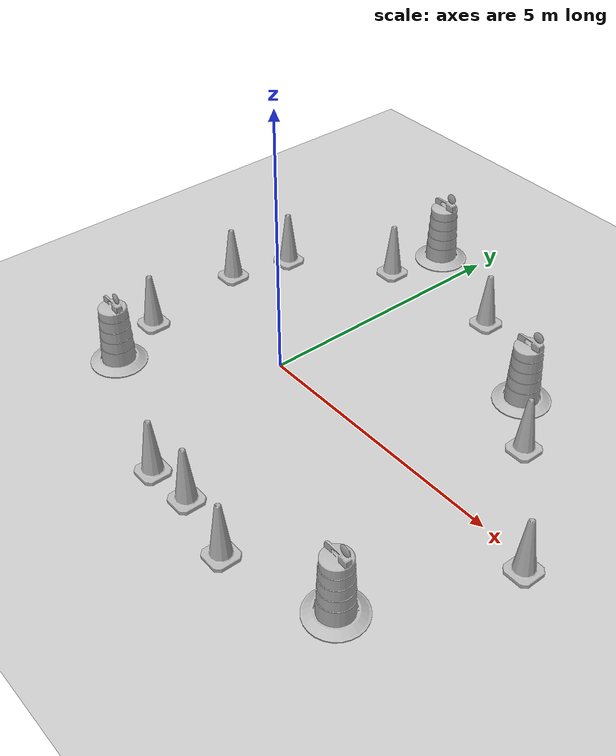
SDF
<sdf version='1.10'>
  <world name='empty'>
    <physics name='1ms' type='ignored'>
      <max_step_size>0.001</max_step_size>
      <real_time_factor>1</real_time_factor>
      <real_time_update_rate>1000</real_time_update_rate>
    </physics>
    <plugin name='gz::sim::systems::Physics' filename='gz-sim-physics-system'/>
    <plugin name='gz::sim::systems::UserCommands' filename='gz-sim-user-commands-system'/>
    <plugin name='gz::sim::systems::SceneBroadcaster' filename='gz-sim-scene-broadcaster-system'/>
    <plugin name='gz::sim::systems::Contact' filename='gz-sim-contact-system'/>
    <gravity>0 0 -9.8000000000000007</gravity>
    <magnetic_field>5.5644999999999998e-06 2.2875799999999999e-05 -4.2388400000000002e-05</magnetic_field>
    <atmosphere type='adiabatic'/>
    <scene>
      <ambient>0.400000006 0.400000006 0.400000006 1</ambient>
      <background>0.699999988 0.699999988 0.699999988 1</background>
      <shadows>true</shadows>
    </scene>
    <model name='ground_plane'>
      <static>true</static>
      <link name='link'>
        <collision name='collision'>
          <geometry>
            <plane>
              <normal>0 0 1</normal>
              <size>100 100</size>
            </plane>
          </geometry>
          <surface>
            <friction>
              <ode/>
            </friction>
            <bounce/>
            <contact/>
          </surface>
        </collision>
        <visual name='visual'>
          <geometry>
            <plane>
              <normal>0 0 1</normal>
              <size>100 100</size>
            </plane>
          </geometry>
          <material>
            <ambient>0.800000012 0.800000012 0.800000012 1</ambient>
            <diffuse>0.800000012 0.800000012 0.800000012 1</diffuse>
            <specular>0.800000012 0.800000012 0.800000012 1</specular>
          </material>
        </visual>
        <pose>0 0 0 0 0 0</pose>
        <inertial>
          <pose>0 0 0 0 0 0</pose>
          <mass>1</mass>
          <inertia>
            <ixx>1</ixx>
            <ixy>0</ixy>
            <ixz>0</ixz>
            <iyy>1</iyy>
            <iyz>0</iyz>
            <izz>1</izz>
          </inertia>
        </inertial>
        <enable_wind>false</enable_wind>
      </link>
      <pose>0 0 0 0 0 0</pose>
      <self_collide>false</self_collide>
    </model>
    <model name='Construction Barrel'>
      <link name='link'>
        <inertial>
          <pose>0 0 0.40000000000000002 0 0 0</pose>
          <mass>500</mass>
          <inertia>
            <ixx>51.209600000000002</ixx>
            <iyy>51.209600000000002</iyy>
            <izz>25</izz>
            <ixy>0</ixy>
            <ixz>0</ixz>
            <iyz>0</iyz>
          </inertia>
        </inertial>
        <collision name='collision'>
          <geometry>
            <mesh>
              <uri>file:///home/gabriel-vidal/dev_ws/src/my_bot/models/construction_barrel/meshes/construction_barrel.dae</uri>
            </mesh>
          </geometry>
        </collision>
        <visual name='visual'>
          <geometry>
            <mesh>
              <uri>file:///home/gabriel-vidal/dev_ws/src/my_bot/models/construction_barrel/meshes/construction_barrel.dae</uri>
            </mesh>
          </geometry>
        </visual>
        <pose>0 0 0 0 0 0</pose>
        <enable_wind>false</enable_wind>
      </link>
      <pose>3.3563624736045483 2.6226405537947932 0 0 0 0</pose>
      <static>false</static>
      <self_collide>false</self_collide>
    </model>
    <model name='Construction Barrel_0'>
      <link name='link'>
        <inertial>
          <pose>0 0 0.40000000000000002 0 0 0</pose>
          <mass>500</mass>
          <inertia>
            <ixx>51.209600000000002</ixx>
            <iyy>51.209600000000002</iyy>
            <izz>25</izz>
            <ixy>0</ixy>
            <ixz>0</ixz>
            <iyz>0</iyz>
          </inertia>
        </inertial>
        <collision name='collision'>
          <geometry>
            <mesh>
              <uri>file:///home/gabriel-vidal/dev_ws/src/my_bot/models/construction_barrel/meshes/construction_barrel.dae</uri>
            </mesh>
          </geometry>
        </collision>
        <visual name='visual'>
          <geometry>
            <mesh>
              <uri>file:///home/gabriel-vidal/dev_ws/src/my_bot/models/construction_barrel/meshes/construction_barrel.dae</uri>
            </mesh>
          </geometry>
        </visual>
        <pose>0 0 0 0 0 0</pose>
        <enable_wind>false</enable_wind>
      </link>
      <pose>-0.65427540934645823 4.6099522019395058 0 0 0 0</pose>
      <static>false</static>
      <self_collide>false</self_collide>
    </model>
    <model name='Construction Barrel_1'>
      <link name='link'>
        <inertial>
          <pose>0 0 0.40000000000000002 0 0 0</pose>
          <mass>500</mass>
          <inertia>
            <ixx>51.209600000000002</ixx>
            <iyy>51.209600000000002</iyy>
            <izz>25</izz>
            <ixy>0</ixy>
            <ixz>0</ixz>
            <iyz>0</iyz>
          </inertia>
        </inertial>
        <collision name='collision'>
          <geometry>
            <mesh>
              <uri>file:///home/gabriel-vidal/dev_ws/src/my_bot/models/construction_barrel/meshes/construction_barrel.dae</uri>
            </mesh>
          </geometry>
        </collision>
        <visual name='visual'>
          <geometry>
            <mesh>
              <uri>file:///home/gabriel-vidal/dev_ws/src/my_bot/models/construction_barrel/meshes/construction_barrel.dae</uri>
            </mesh>
          </geometry>
        </visual>
        <pose>0 0 0 0 0 0</pose>
        <enable_wind>false</enable_wind>
      </link>
      <pose>4.8185210325130505 -2.7676932809041381 0 0 0 0</pose>
      <static>false</static>
      <self_collide>false</self_collide>
    </model>
    <model name='Construction Barrel_2'>
      <link name='link'>
        <inertial>
          <pose>0 0 0.40000000000000002 0 0 0</pose>
          <mass>500</mass>
          <inertia>
            <ixx>51.209600000000002</ixx>
            <iyy>51.209600000000002</iyy>
            <izz>25</izz>
            <ixy>0</ixy>
            <ixz>0</ixz>
            <iyz>0</iyz>
          </inertia>
        </inertial>
        <collision name='collision'>
          <geometry>
            <mesh>
              <uri>file:///home/gabriel-vidal/dev_ws/src/my_bot/models/construction_barrel/meshes/construction_barrel.dae</uri>
            </mesh>
          </geometry>
        </collision>
        <visual name='visual'>
          <geometry>
            <mesh>
              <uri>file:///home/gabriel-vidal/dev_ws/src/my_bot/models/construction_barrel/meshes/construction_barrel.dae</uri>
            </mesh>
          </geometry>
        </visual>
        <pose>0 0 0 0 0 0</pose>
        <enable_wind>false</enable_wind>
      </link>
      <pose>-1.9442441608846392 -2.1336244816185834 0 0 0 0</pose>
      <static>false</static>
      <self_collide>false</self_collide>
    </model>
    <model name='Construction Cone'>
      <link name='link'>
        <collision name='collision'>
          <geometry>
            <mesh>
              <scale>10 10 10</scale>
              <uri>file:///home/gabriel-vidal/dev_ws/src/my_bot/models/construction_cone/meshes/construction_cone.dae</uri>
            </mesh>
          </geometry>
        </collision>
        <visual name='visual'>
          <geometry>
            <mesh>
              <scale>10 10 10</scale>
              <uri>file:///home/gabriel-vidal/dev_ws/src/my_bot/models/construction_cone/meshes/construction_cone.dae</uri>
            </mesh>
          </geometry>
        </visual>
        <pose>0 0 0 0 0 0</pose>
        <inertial>
          <pose>0 0 0 0 0 0</pose>
          <mass>1</mass>
          <inertia>
            <ixx>1</ixx>
            <ixy>0</ixy>
            <ixz>0</ixz>
            <iyy>1</iyy>
            <iyz>0</iyz>
            <izz>1</izz>
          </inertia>
        </inertial>
        <enable_wind>false</enable_wind>
      </link>
      <pose>2.95852421887923 -3.4027824223628493 0 0 0 0</pose>
      <static>false</static>
      <self_collide>false</self_collide>
    </model>
    <model name='Construction Cone_0'>
      <link name='link'>
        <collision name='collision'>
          <geometry>
            <mesh>
              <scale>10 10 10</scale>
              <uri>file:///home/gabriel-vidal/dev_ws/src/my_bot/models/construction_cone/meshes/construction_cone.dae</uri>
            </mesh>
          </geometry>
        </collision>
        <visual name='visual'>
          <geometry>
            <mesh>
              <scale>10 10 10</scale>
              <uri>file:///home/gabriel-vidal/dev_ws/src/my_bot/models/construction_cone/meshes/construction_cone.dae</uri>
            </mesh>
          </geometry>
        </visual>
        <pose>0 0 0 0 0 0</pose>
        <inertial>
          <pose>0 0 0 0 0 0</pose>
          <mass>1</mass>
          <inertia>
            <ixx>1</ixx>
            <ixy>0</ixy>
            <ixz>0</ixz>
            <iyy>1</iyy>
            <iyz>0</iyz>
            <izz>1</izz>
          </inertia>
        </inertial>
        <enable_wind>false</enable_wind>
      </link>
      <pose>1.6991263963474195 -3.1582245717215125 0 0 0 0</pose>
      <static>false</static>
      <self_collide>false</self_collide>
    </model>
    <model name='Construction Cone_1'>
      <link name='link'>
        <collision name='collision'>
          <geometry>
            <mesh>
              <scale>10 10 10</scale>
              <uri>file:///home/gabriel-vidal/dev_ws/src/my_bot/models/construction_cone/meshes/construction_cone.dae</uri>
            </mesh>
          </geometry>
        </collision>
        <visual name='visual'>
          <geometry>
            <mesh>
              <scale>10 10 10</scale>
              <uri>file:///home/gabriel-vidal/dev_ws/src/my_bot/models/construction_cone/meshes/construction_cone.dae</uri>
            </mesh>
          </geometry>
        </visual>
        <pose>0 0 0 0 0 0</pose>
        <inertial>
          <pose>0 0 0 0 0 0</pose>
          <mass>1</mass>
          <inertia>
            <ixx>1</ixx>
            <ixy>0</ixy>
            <ixz>0</ixz>
            <iyy>1</iyy>
            <iyz>0</iyz>
            <izz>1</izz>
          </inertia>
        </inertial>
        <enable_wind>false</enable_wind>
      </link>
      <pose>4.2361936879602755 1.7220277393712669 0 0 0 0</pose>
      <static>false</static>
      <self_collide>false</self_collide>
    </model>
    <model name='Construction Cone_2'>
      <link name='link'>
        <collision name='collision'>
          <geometry>
            <mesh>
              <scale>10 10 10</scale>
              <uri>file:///home/gabriel-vidal/dev_ws/src/my_bot/models/construction_cone/meshes/construction_cone.dae</uri>
            </mesh>
          </geometry>
        </collision>
        <visual name='visual'>
          <geometry>
            <mesh>
              <scale>10 10 10</scale>
              <uri>file:///home/gabriel-vidal/dev_ws/src/my_bot/models/construction_cone/meshes/construction_cone.dae</uri>
            </mesh>
          </geometry>
        </visual>
        <pose>0 0 0 0 0 0</pose>
        <inertial>
          <pose>0 0 0 0 0 0</pose>
          <mass>1</mass>
          <inertia>
            <ixx>1</ixx>
            <ixy>0</ixy>
            <ixz>0</ixz>
            <iyy>1</iyy>
            <iyz>0</iyz>
            <izz>1</izz>
          </inertia>
        </inertial>
        <enable_wind>false</enable_wind>
      </link>
      <pose>-0.85860120530294015 3.4749694630725272 0 0 0 0</pose>
      <static>false</static>
      <self_collide>false</self_collide>
    </model>
    <model name='Construction Cone_3'>
      <link name='link'>
        <collision name='collision'>
          <geometry>
            <mesh>
              <scale>10 10 10</scale>
              <uri>file:///home/gabriel-vidal/dev_ws/src/my_bot/models/construction_cone/meshes/construction_cone.dae</uri>
            </mesh>
          </geometry>
        </collision>
        <visual name='visual'>
          <geometry>
            <mesh>
              <scale>10 10 10</scale>
              <uri>file:///home/gabriel-vidal/dev_ws/src/my_bot/models/construction_cone/meshes/construction_cone.dae</uri>
            </mesh>
          </geometry>
        </visual>
        <pose>0 0 0 0 0 0</pose>
        <inertial>
          <pose>0 0 0 0 0 0</pose>
          <mass>1</mass>
          <inertia>
            <ixx>1</ixx>
            <ixy>0</ixy>
            <ixz>0</ixz>
            <iyy>1</iyy>
            <iyz>0</iyz>
            <izz>1</izz>
          </inertia>
        </inertial>
        <enable_wind>false</enable_wind>
      </link>
      <pose>-2.7516275477543166 0.97802593401269378 0 0 0 0</pose>
      <static>false</static>
      <self_collide>false</self_collide>
    </model>
    <model name='Construction Cone_4'>
      <link name='link'>
        <collision name='collision'>
          <geometry>
            <mesh>
              <scale>10 10 10</scale>
              <uri>file:///home/gabriel-vidal/dev_ws/src/my_bot/models/construction_cone/meshes/construction_cone.dae</uri>
            </mesh>
          </geometry>
        </collision>
        <visual name='visual'>
          <geometry>
            <mesh>
              <scale>10 10 10</scale>
              <uri>file:///home/gabriel-vidal/dev_ws/src/my_bot/models/construction_cone/meshes/construction_cone.dae</uri>
            </mesh>
          </geometry>
        </visual>
        <pose>0 0 0 0 0 0</pose>
        <inertial>
          <pose>0 0 0 0 0 0</pose>
          <mass>1</mass>
          <inertia>
            <ixx>1</ixx>
            <ixy>0</ixy>
            <ixz>0</ixz>
            <iyy>1</iyy>
            <iyz>0</iyz>
            <izz>1</izz>
          </inertia>
        </inertial>
        <enable_wind>false</enable_wind>
      </link>
      <pose>-2.4378398066079723 -1.0799192379916911 0 0 0 0</pose>
      <static>false</static>
      <self_collide>false</self_collide>
    </model>
    <model name='Construction Cone_5'>
      <link name='link'>
        <collision name='collision'>
          <geometry>
            <mesh>
              <scale>10 10 10</scale>
              <uri>file:///home/gabriel-vidal/dev_ws/src/my_bot/models/construction_cone/meshes/construction_cone.dae</uri>
            </mesh>
          </geometry>
        </collision>
        <visual name='visual'>
          <geometry>
            <mesh>
              <scale>10 10 10</scale>
              <uri>file:///home/gabriel-vidal/dev_ws/src/my_bot/models/construction_cone/meshes/construction_cone.dae</uri>
            </mesh>
          </geometry>
        </visual>
        <pose>0 0 0 0 0 0</pose>
        <inertial>
          <pose>0 0 0 0 0 0</pose>
          <mass>1</mass>
          <inertia>
            <ixx>1</ixx>
            <ixy>0</ixy>
            <ixz>0</ixz>
            <iyy>1</iyy>
            <iyz>0</iyz>
            <izz>1</izz>
          </inertia>
        </inertial>
        <enable_wind>false</enable_wind>
      </link>
      <pose>0.83954273981658023 -3.2189747311332941 0 0 0 0</pose>
      <static>false</static>
      <self_collide>false</self_collide>
    </model>
    <model name='Construction Cone_6'>
      <link name='link'>
        <collision name='collision'>
          <geometry>
            <mesh>
              <scale>10 10 10</scale>
              <uri>file:///home/gabriel-vidal/dev_ws/src/my_bot/models/construction_cone/meshes/construction_cone.dae</uri>
            </mesh>
          </geometry>
        </collision>
        <visual name='visual'>
          <geometry>
            <mesh>
              <scale>10 10 10</scale>
              <uri>file:///home/gabriel-vidal/dev_ws/src/my_bot/models/construction_cone/meshes/construction_cone.dae</uri>
            </mesh>
          </geometry>
        </visual>
        <pose>0 0 0 0 0 0</pose>
        <inertial>
          <pose>0 0 0 0 0 0</pose>
          <mass>1</mass>
          <inertia>
            <ixx>1</ixx>
            <ixy>0</ixy>
            <ixz>0</ixz>
            <iyy>1</iyy>
            <iyz>0</iyz>
            <izz>1</izz>
          </inertia>
        </inertial>
        <enable_wind>false</enable_wind>
      </link>
      <pose>1.4767090974352719 3.6978797732613797 0 0 0 0</pose>
      <static>false</static>
      <self_collide>false</self_collide>
    </model>
    <model name='Construction Cone_7'>
      <link name='link'>
        <collision name='collision'>
          <geometry>
            <mesh>
              <scale>10 10 10</scale>
              <uri>file:///home/gabriel-vidal/dev_ws/src/my_bot/models/construction_cone/meshes/construction_cone.dae</uri>
            </mesh>
          </geometry>
        </collision>
        <visual name='visual'>
          <geometry>
            <mesh>
              <scale>10 10 10</scale>
              <uri>file:///home/gabriel-vidal/dev_ws/src/my_bot/models/construction_cone/meshes/construction_cone.dae</uri>
            </mesh>
          </geometry>
        </visual>
        <pose>0 0 0 0 0 0</pose>
        <inertial>
          <pose>0 0 0 0 0 0</pose>
          <mass>1</mass>
          <inertia>
            <ixx>1</ixx>
            <ixy>0</ixy>
            <ixz>0</ixz>
            <iyy>1</iyy>
            <iyz>0</iyz>
            <izz>1</izz>
          </inertia>
        </inertial>
        <enable_wind>false</enable_wind>
      </link>
      <pose>5.9776569729308981 -0.18338618687053462 0 0 0 0</pose>
      <static>false</static>
      <self_collide>false</self_collide>
    </model>
    <model name='Construction Cone_8'>
      <link name='link'>
        <collision name='collision'>
          <geometry>
            <mesh>
              <scale>10 10 10</scale>
              <uri>file:///home/gabriel-vidal/dev_ws/src/my_bot/models/construction_cone/meshes/construction_cone.dae</uri>
            </mesh>
          </geometry>
        </collision>
        <visual name='visual'>
          <geometry>
            <mesh>
              <scale>10 10 10</scale>
              <uri>file:///home/gabriel-vidal/dev_ws/src/my_bot/models/construction_cone/meshes/construction_cone.dae</uri>
            </mesh>
          </geometry>
        </visual>
        <pose>0 0 0 0 0 0</pose>
        <inertial>
          <pose>0 0 0 0 0 0</pose>
          <mass>1</mass>
          <inertia>
            <ixx>1</ixx>
            <ixy>0</ixy>
            <ixz>0</ixz>
            <iyy>1</iyy>
            <iyz>0</iyz>
            <izz>1</izz>
          </inertia>
        </inertial>
        <enable_wind>false</enable_wind>
      </link>
      <pose>-2.4924508469812037 2.1588820570462284 0 0 0 0</pose>
      <static>false</static>
      <self_collide>false</self_collide>
    </model>
    <light name='sun' type='directional'>
      <pose>0 0 10 0 0 0</pose>
      <cast_shadows>true</cast_shadows>
      <intensity>1</intensity>
      <direction>-0.5 0.10000000000000001 -0.90000000000000002</direction>
      <diffuse>0.800000012 0.800000012 0.800000012 1</diffuse>
      <specular>0.200000003 0.200000003 0.200000003 1</specular>
      <attenuation>
        <range>1000</range>
        <linear>0.01</linear>
        <constant>0.90000000000000002</constant>
        <quadratic>0.001</quadratic>
      </attenuation>
      <spot>
        <inner_angle>0</inner_angle>
        <outer_angle>0</outer_angle>
        <falloff>0</falloff>
      </spot>
    </light>
  </world>
</sdf>
